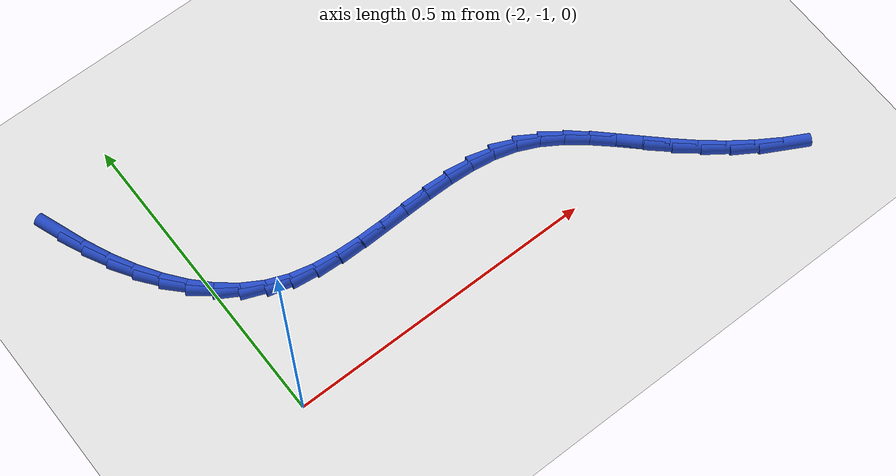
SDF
<sdf version="1.6">
 <world name="default">
  <model name="ground_plane">
   <static>1</static>
   <link name="link">
    <collision name="collision">
     <geometry><plane><normal>0 0 1</normal><size>100 100</size></plane></geometry>
     <surface><friction><ode><mu>100</mu><mu2>50</mu2></ode></friction></surface>
    </collision>
    <visual name="visual">
     <cast_shadows>0</cast_shadows>
     <geometry><plane><normal>0 0 1</normal><size>100 100</size></plane></geometry>
     <material>
      <script><uri>file://media/materials/scripts/gazebo.material</uri><name>Gazebo/WhiteGlow</name></script>
     </material>
    </visual>
   </link>
  </model>
  <model name="line">
   <link name="link_104">
    <pose>-2.1234916075589503 -0.5693230278323529 0.01 0 1.57 -1.218357907672686</pose>
    <collision name="collision">
     <geometry><cylinder><radius>0.01</radius><length>0.08</length></cylinder></geometry>
    </collision>
    <visual name="visual">
     <material>
      <script><name>Gazebo/Blue</name><uri>file://media/materials/scripts/gazebo.material</uri></script>
     </material>
     <geometry><cylinder><radius>0.01</radius><length>0.08</length></cylinder></geometry>
    </visual>
   </link>
   <link name="link_105">
    <pose>-2.1086843889320668 -0.6095825397796446 0.01 0 1.57 -1.1535748122279779</pose>
    <collision name="collision">
     <geometry><cylinder><radius>0.01</radius><length>0.08</length></cylinder></geometry>
    </collision>
    <visual name="visual">
     <material>
      <script><name>Gazebo/Blue</name><uri>file://media/materials/scripts/gazebo.material</uri></script>
     </material>
     <geometry><cylinder><radius>0.01</radius><length>0.08</length></cylinder></geometry>
    </visual>
   </link>
   <link name="link_106">
    <pose>-2.0914224274559907 -0.6485271356974125 0.01 0 1.57 -1.0817702291233002</pose>
    <collision name="collision">
     <geometry><cylinder><radius>0.01</radius><length>0.08</length></cylinder></geometry>
    </collision>
    <visual name="visual">
     <material>
      <script><name>Gazebo/Blue</name><uri>file://media/materials/scripts/gazebo.material</uri></script>
     </material>
     <geometry><cylinder><radius>0.01</radius><length>0.08</length></cylinder></geometry>
    </visual>
   </link>
   <link name="link_107">
    <pose>-2.0716994398102426 -0.6855908193449737 0.01 0 1.57 -1.0007547029367856</pose>
    <collision name="collision">
     <geometry><cylinder><radius>0.01</radius><length>0.08</length></cylinder></geometry>
    </collision>
    <visual name="visual">
     <material>
      <script><name>Gazebo/Blue</name><uri>file://media/materials/scripts/gazebo.material</uri></script>
     </material>
     <geometry><cylinder><radius>0.01</radius><length>0.08</length></cylinder></geometry>
    </visual>
   </link>
   <link name="link_108">
    <pose>-2.0495091426743444 -0.7202075944816451 0.01 0 1.57 -0.9081168737494214</pose>
    <collision name="collision">
     <geometry><cylinder><radius>0.01</radius><length>0.08</length></cylinder></geometry>
    </collision>
    <visual name="visual">
     <material>
      <script><name>Gazebo/Blue</name><uri>file://media/materials/scripts/gazebo.material</uri></script>
     </material>
     <geometry><cylinder><radius>0.01</radius><length>0.08</length></cylinder></geometry>
    </visual>
   </link>
   <link name="link_109">
    <pose>-2.024845252727817 -0.7518114648667439 0.01 0 1.57 -0.8013696801975323</pose>
    <collision name="collision">
     <geometry><cylinder><radius>0.01</radius><length>0.08</length></cylinder></geometry>
    </collision>
    <visual name="visual">
     <material>
      <script><name>Gazebo/Blue</name><uri>file://media/materials/scripts/gazebo.material</uri></script>
     </material>
     <geometry><cylinder><radius>0.01</radius><length>0.08</length></cylinder></geometry>
    </visual>
   </link>
   <link name="link_110">
    <pose>-1.9977014866501817 -0.7798364342595862 0.01 0 1.57 -0.6783550726081481</pose>
    <collision name="collision">
     <geometry><cylinder><radius>0.01</radius><length>0.08</length></cylinder></geometry>
    </collision>
    <visual name="visual">
     <material>
      <script><name>Gazebo/Blue</name><uri>file://media/materials/scripts/gazebo.material</uri></script>
     </material>
     <geometry><cylinder><radius>0.01</radius><length>0.08</length></cylinder></geometry>
    </visual>
   </link>
   <link name="link_111">
    <pose>-1.9680715611209607 -0.8037165064194896 0.01 0 1.57 -0.5380299350415222</pose>
    <collision name="collision">
     <geometry><cylinder><radius>0.01</radius><length>0.08</length></cylinder></geometry>
    </collision>
    <visual name="visual">
     <material>
      <script><name>Gazebo/Blue</name><uri>file://media/materials/scripts/gazebo.material</uri></script>
     </material>
     <geometry><cylinder><radius>0.01</radius><length>0.08</length></cylinder></geometry>
    </visual>
   </link>
   <link name="link_112">
    <pose>-1.9359491928196733 -0.8228856851057704 0.01 0 1.57 -0.3823380291538703</pose>
    <collision name="collision">
     <geometry><cylinder><radius>0.01</radius><length>0.08</length></cylinder></geometry>
    </collision>
    <visual name="visual">
     <material>
      <script><name>Gazebo/Blue</name><uri>file://media/materials/scripts/gazebo.material</uri></script>
     </material>
     <geometry><cylinder><radius>0.01</radius><length>0.08</length></cylinder></geometry>
    </visual>
   </link>
   <link name="link_113">
    <pose>-1.9013361085107425 -0.836804515820062 0.01 0 1.57 -0.23583869272235564</pose>
    <collision name="collision">
     <geometry><cylinder><radius>0.01</radius><length>0.08</length></cylinder></geometry>
    </collision>
    <visual name="visual">
     <material>
      <script><name>Gazebo/Blue</name><uri>file://media/materials/scripts/gazebo.material</uri></script>
     </material>
     <geometry><cylinder><radius>0.01</radius><length>0.08</length></cylinder></geometry>
    </visual>
   </link>
   <link name="link_114">
    <pose>-1.864455483509456 -0.8456673228499556 0.01 0 1.57 -0.12373521065981219</pose>
    <collision name="collision">
     <geometry><cylinder><radius>0.01</radius><length>0.08</length></cylinder></geometry>
    </collision>
    <visual name="visual">
     <material>
      <script><name>Gazebo/Blue</name><uri>file://media/materials/scripts/gazebo.material</uri></script>
     </material>
     <geometry><cylinder><radius>0.01</radius><length>0.08</length></cylinder></geometry>
    </visual>
   </link>
   <link name="link_115">
    <pose>-1.8257748321947591 -0.8504780579147441 0.01 0 1.57 -0.045078116820260354</pose>
    <collision name="collision">
     <geometry><cylinder><radius>0.01</radius><length>0.08</length></cylinder></geometry>
    </collision>
    <visual name="visual">
     <material>
      <script><name>Gazebo/Blue</name><uri>file://media/materials/scripts/gazebo.material</uri></script>
     </material>
     <geometry><cylinder><radius>0.01</radius><length>0.08</length></cylinder></geometry>
    </visual>
   </link>
   <link name="link_116">
    <pose>-1.7857742710239488 -0.852282430233218 0.01 0 1.57 0.0038266182526143187</pose>
    <collision name="collision">
     <geometry><cylinder><radius>0.01</radius><length>0.08</length></cylinder></geometry>
    </collision>
    <visual name="visual">
     <material>
      <script><name>Gazebo/Blue</name><uri>file://media/materials/scripts/gazebo.material</uri></script>
     </material>
     <geometry><cylinder><radius>0.01</radius><length>0.08</length></cylinder></geometry>
    </visual>
   </link>
   <link name="link_117">
    <pose>-1.7449339164543185 -0.8521261490241689 0.01 0 1.57 0.02599474278096921</pose>
    <collision name="collision">
     <geometry><cylinder><radius>0.01</radius><length>0.08</length></cylinder></geometry>
    </collision>
    <visual name="visual">
     <material>
      <script><name>Gazebo/Blue</name><uri>file://media/materials/scripts/gazebo.material</uri></script>
     </material>
     <geometry><cylinder><radius>0.01</radius><length>0.08</length></cylinder></geometry>
    </visual>
   </link>
   <link name="link_118">
    <pose>-1.7037338849431638 -0.8510549235063875 0.01 0 1.57 0.022889622550391366</pose>
    <collision name="collision">
     <geometry><cylinder><radius>0.01</radius><length>0.08</length></cylinder></geometry>
    </collision>
    <visual name="visual">
     <material>
      <script><name>Gazebo/Blue</name><uri>file://media/materials/scripts/gazebo.material</uri></script>
     </material>
     <geometry><cylinder><radius>0.01</radius><length>0.08</length></cylinder></geometry>
    </visual>
   </link>
   <link name="link_119">
    <pose>-1.6626542929477799 -0.8501144628986652 0.01 0 1.57 -0.005830446323761758</pose>
    <collision name="collision">
     <geometry><cylinder><radius>0.01</radius><length>0.08</length></cylinder></geometry>
    </collision>
    <visual name="visual">
     <material>
      <script><name>Gazebo/Blue</name><uri>file://media/materials/scripts/gazebo.material</uri></script>
     </material>
     <geometry><cylinder><radius>0.01</radius><length>0.08</length></cylinder></geometry>
    </visual>
   </link>
   <link name="link_120">
    <pose>-1.6221752569254608 -0.8503504764197931 0.01 0 1.57 -0.06231259904285002</pose>
    <collision name="collision">
     <geometry><cylinder><radius>0.01</radius><length>0.08</length></cylinder></geometry>
    </collision>
    <visual name="visual">
     <material>
      <script><name>Gazebo/Blue</name><uri>file://media/materials/scripts/gazebo.material</uri></script>
     </material>
     <geometry><cylinder><radius>0.01</radius><length>0.08</length></cylinder></geometry>
    </visual>
   </link>
   <link name="link_121">
    <pose>-1.5827768933335038 -0.8528086732885621 0.01 0 1.57 -0.15019376620956576</pose>
    <collision name="collision">
     <geometry><cylinder><radius>0.01</radius><length>0.08</length></cylinder></geometry>
    </collision>
    <visual name="visual">
     <material>
      <script><name>Gazebo/Blue</name><uri>file://media/materials/scripts/gazebo.material</uri></script>
     </material>
     <geometry><cylinder><radius>0.01</radius><length>0.08</length></cylinder></geometry>
    </visual>
   </link>
   <link name="link_122">
    <pose>-1.5449393186292033 -0.8585347627237641 0.01 0 1.57 -0.27343928463091294</pose>
    <collision name="collision">
     <geometry><cylinder><radius>0.01</radius><length>0.08</length></cylinder></geometry>
    </collision>
    <visual name="visual">
     <material>
      <script><name>Gazebo/Blue</name><uri>file://media/materials/scripts/gazebo.material</uri></script>
     </material>
     <geometry><cylinder><radius>0.01</radius><length>0.08</length></cylinder></geometry>
    </visual>
   </link>
   <link name="link_123">
    <pose>-1.5091426492698536 -0.8685744539441891 0.01 0 1.57 -0.4273224333677978</pose>
    <collision name="collision">
     <geometry><cylinder><radius>0.01</radius><length>0.08</length></cylinder></geometry>
    </collision>
    <visual name="visual">
     <material>
      <script><name>Gazebo/Blue</name><uri>file://media/materials/scripts/gazebo.material</uri></script>
     </material>
     <geometry><cylinder><radius>0.01</radius><length>0.08</length></cylinder></geometry>
    </visual>
   </link>
   <link name="link_124">
    <pose>-1.4757569935373838 -0.8837777554927492 0.01 0 1.57 -0.5655859084805048</pose>
    <collision name="collision">
     <geometry><cylinder><radius>0.01</radius><length>0.08</length></cylinder></geometry>
    </collision>
    <visual name="visual">
     <material>
      <script><name>Gazebo/Blue</name><uri>file://media/materials/scripts/gazebo.material</uri></script>
     </material>
     <geometry><cylinder><radius>0.01</radius><length>0.08</length></cylinder></geometry>
    </visual>
   </link>
   <link name="link_125">
    <pose>-1.444410687713547 -0.9036750896061577 0.01 0 1.57 -0.6663158562211449</pose>
    <collision name="collision">
     <geometry><cylinder><radius>0.01</radius><length>0.08</length></cylinder></geometry>
    </collision>
    <visual name="visual">
     <material>
      <script><name>Gazebo/Blue</name><uri>file://media/materials/scripts/gazebo.material</uri></script>
     </material>
     <geometry><cylinder><radius>0.01</radius><length>0.08</length></cylinder></geometry>
    </visual>
   </link>
   <link name="link_126">
    <pose>-1.4144255739229867 -0.9272516361925521 0.01 0 1.57 -0.7302918164219988</pose>
    <collision name="collision">
     <geometry><cylinder><radius>0.01</radius><length>0.08</length></cylinder></geometry>
    </collision>
    <visual name="visual">
     <material>
      <script><name>Gazebo/Blue</name><uri>file://media/materials/scripts/gazebo.material</uri></script>
     </material>
     <geometry><cylinder><radius>0.01</radius><length>0.08</length></cylinder></geometry>
    </visual>
   </link>
   <link name="link_127">
    <pose>-1.3851225253861663 -0.9534908515135955 0.01 0 1.57 -0.7606631793024321</pose>
    <collision name="collision">
     <geometry><cylinder><radius>0.01</radius><length>0.08</length></cylinder></geometry>
    </collision>
    <visual name="visual">
     <material>
      <script><name>Gazebo/Blue</name><uri>file://media/materials/scripts/gazebo.material</uri></script>
     </material>
     <geometry><cylinder><radius>0.01</radius><length>0.08</length></cylinder></geometry>
    </visual>
   </link>
   <link name="link_128">
    <pose>-1.3558224153235474 -0.9813761918309533 0.01 0 1.57 -0.7604188104181627</pose>
    <collision name="collision">
     <geometry><cylinder><radius>0.01</radius><length>0.08</length></cylinder></geometry>
    </collision>
    <visual name="visual">
     <material>
      <script><name>Gazebo/Blue</name><uri>file://media/materials/scripts/gazebo.material</uri></script>
     </material>
     <geometry><cylinder><radius>0.01</radius><length>0.08</length></cylinder></geometry>
    </visual>
   </link>
   <link name="link_129">
    <pose>-1.3258461169555922 -1.00989111340629 0.01 0 1.57 -0.7315708652232225</pose>
    <collision name="collision">
     <geometry><cylinder><radius>0.01</radius><length>0.08</length></cylinder></geometry>
    </collision>
    <visual name="visual">
     <material>
      <script><name>Gazebo/Blue</name><uri>file://media/materials/scripts/gazebo.material</uri></script>
     </material>
     <geometry><cylinder><radius>0.01</radius><length>0.08</length></cylinder></geometry>
    </visual>
   </link>
   <link name="link_130">
    <pose>-1.294514511030558 -1.0380190767164097 0.01 0 1.57 -0.6799463435736784</pose>
    <collision name="collision">
     <geometry><cylinder><radius>0.01</radius><length>0.08</length></cylinder></geometry>
    </collision>
    <visual name="visual">
     <material>
      <script><name>Gazebo/Blue</name><uri>file://media/materials/scripts/gazebo.material</uri></script>
     </material>
     <geometry><cylinder><radius>0.01</radius><length>0.08</length></cylinder></geometry>
    </visual>
   </link>
   <link name="link_131">
    <pose>-1.2613343698008672 -1.0648476309350954 0.01 0 1.57 -0.6220640762583542</pose>
    <collision name="collision">
     <geometry><cylinder><radius>0.01</radius><length>0.08</length></cylinder></geometry>
    </collision>
    <visual name="visual">
     <material>
      <script><name>Gazebo/Blue</name><uri>file://media/materials/scripts/gazebo.material</uri></script>
     </material>
     <geometry><cylinder><radius>0.01</radius><length>0.08</length></cylinder></geometry>
    </visual>
   </link>
   <link name="link_132">
    <pose>-1.2264808940873522 -1.0898386073154702 0.01 0 1.57 -0.5600567219964925</pose>
    <collision name="collision">
     <geometry><cylinder><radius>0.01</radius><length>0.08</length></cylinder></geometry>
    </collision>
    <visual name="visual">
     <material>
      <script><name>Gazebo/Blue</name><uri>file://media/materials/scripts/gazebo.material</uri></script>
     </material>
     <geometry><cylinder><radius>0.01</radius><length>0.08</length></cylinder></geometry>
    </visual>
   </link>
   <link name="link_133">
    <pose>-1.190279471355651 -1.1125379331118825 0.01 0 1.57 -0.49206345522145783</pose>
    <collision name="collision">
     <geometry><cylinder><radius>0.01</radius><length>0.08</length></cylinder></geometry>
    </collision>
    <visual name="visual">
     <material>
      <script><name>Gazebo/Blue</name><uri>file://media/materials/scripts/gazebo.material</uri></script>
     </material>
     <geometry><cylinder><radius>0.01</radius><length>0.08</length></cylinder></geometry>
    </visual>
   </link>
  </model>
 </world>
</sdf>
